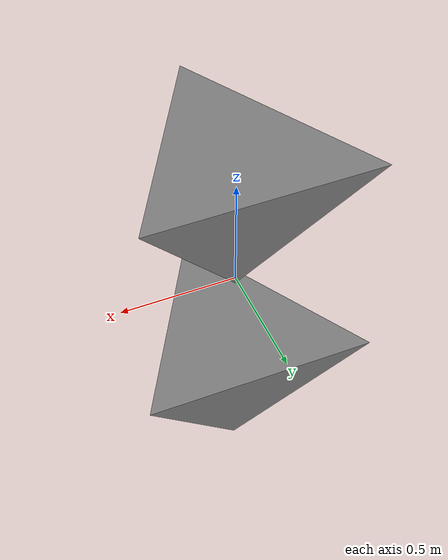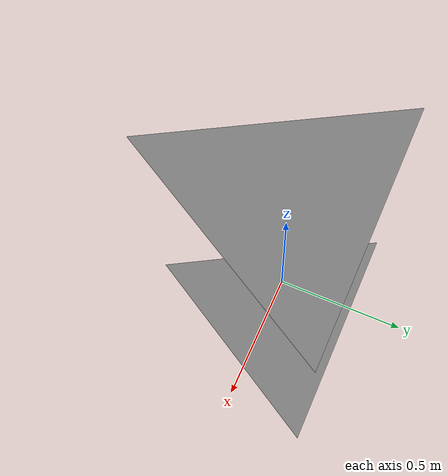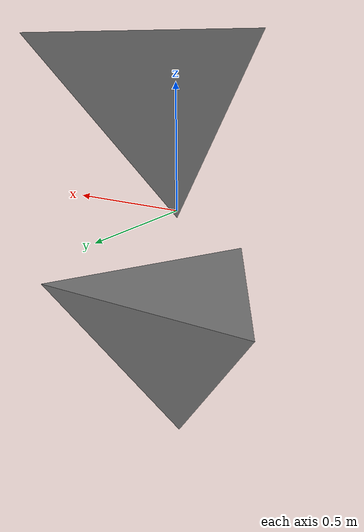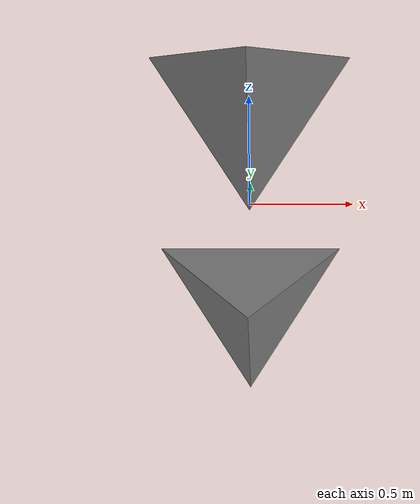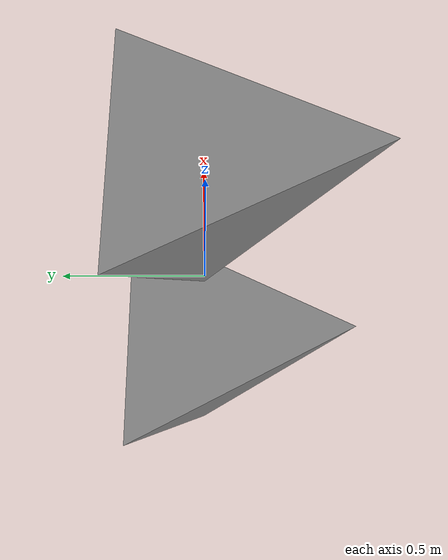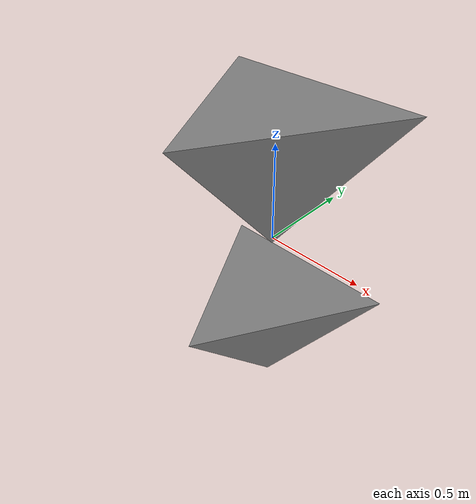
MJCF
<mujoco>
    <asset>
        <mesh file="tet-pyramid.stl" name="tet-pyramid"/>
    </asset>
    <worldbody>
        <body pos="-0 0 0.5" quat="0.707107 -0.707107 -4.32978e-17 -4.32978e-17">
            <geom mesh="tet-pyramid" type="mesh" friction="0.000000"/>
            <freejoint/>
        </body>
        <body pos="-0 0 -0.5" quat="0.707107 -0.707107 -4.32978e-17 -4.32978e-17">
            <geom mesh="tet-pyramid" type="mesh" friction="0.000000"/>
        </body>
    </worldbody>
</mujoco>
